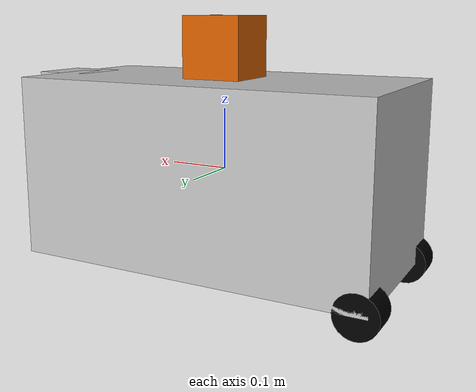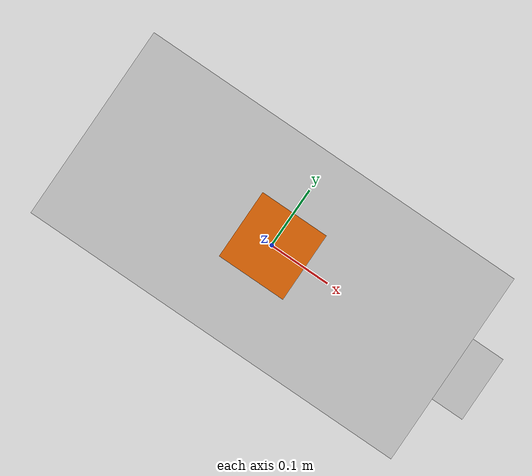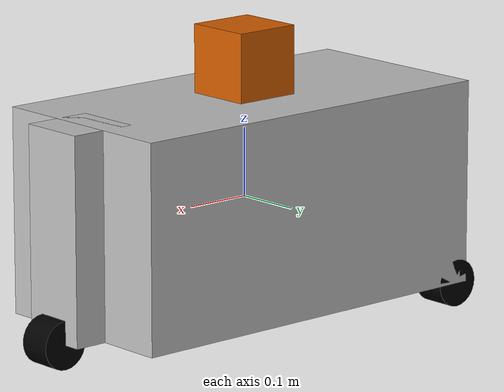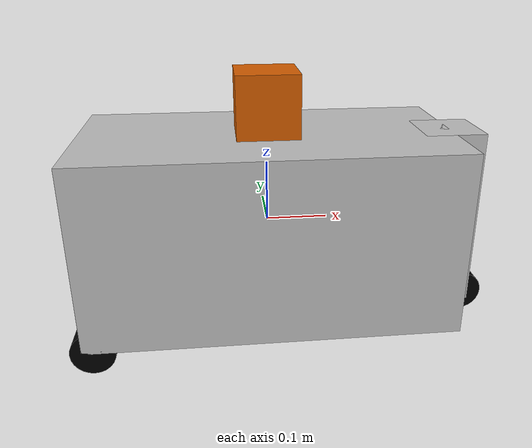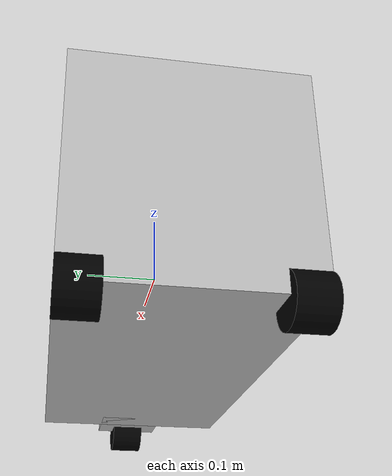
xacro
<?xml version="1.0"?>
<robot name= "mando">
  <link name="base_link">
    <inertial>
      <mass value="1.0"/>
      <inertia ixx="0.015" iyy="0.0375" izz="0.0375" ixy="0" ixz="0" iyz="0"/>
    </inertial>
    <visual>
      <geometry>
        <box size="0.6 0.3 0.3"/>
      </geometry>
      <material name="silver">
        <color rgba="0.75 0.75 0.75 1"/>
      </material>
    </visual>
    <collision>
      <geometry>
        <box size="0.6 0.3 0.3"/>
      </geometry>
    </collision>
  </link>
  <link name="front_caster">
    <inertial>
      <mass value="0.1"/>
      <inertia ixx="0.00083" iyy="0.00083" izz="0.000167" ixy="0" ixz="0" iyz="0"/>
    </inertial>
    <visual>
      <geometry>
        <box size="0.1 0.1 0.3"/>
      </geometry>
      <material name="silver"/>
    </visual>
    <collision>
      <geometry>
        <box size="0.1 0.1 0.3"/>
      </geometry>
    </collision>
  </link>
  <joint name="front_caster_joint" type="continuous">
    <axis xyz="0 0 1"/>
    <parent link="base_link"/>
    <child link="front_caster"/>
    <origin rpy="0 0 0" xyz="0.3 0 0"/>
  </joint>
  <link name="front_wheel">
    <inertial>
      <mass value="0.1"/>
      <inertia ixx="5.1458e-5" iyy="5.1458e-5" izz="6.125e-5" ixy="0" ixz="0" iyz="0"/>
    </inertial>
    <visual>
      <geometry>
        <cylinder length="0.05" radius="0.035"/>
      </geometry>
      <material name="black"/>
    </visual>
    <collision>
      <geometry>
        <cylinder length="0.05" radius="0.035"/>
      </geometry>
    </collision>

  </link>
  <joint name="front_wheel_joint" type="continuous">
    <axis xyz="0 0 1"/>
    <parent link="front_caster"/>
    <child link="front_wheel"/>
    <origin rpy="-1.5708 0 0" xyz="0.05 0 -.15"/>
  </joint>
  <link name="right_wheel">
    <inertial>
      <mass value="0.1"/>
      <inertia ixx="5.1458e-5" iyy="5.1458e-5" izz="6.125e-5" ixy="0" ixz="0" iyz="0"/>
    </inertial>
    <visual>
      <geometry>
        <cylinder length="0.05" radius="0.035"/>
      </geometry>
      <material name="black">
        <color rgba="0 0 0 1"/>
      </material>
    </visual>
    <collision>
      <geometry>
        <cylinder length="0.05" radius="0.035"/>
      </geometry>
    </collision>
  </link>
  <joint name="right_wheel_joint" type="continuous">
    <axis xyz="0 0 1"/>
    <parent link="base_link"/>
    <child link="right_wheel"/>
    <origin rpy="-1.5708 0 0" xyz="-0.2825 -0.125 -.15"/>
  </joint>
  <link name="left_wheel">
    <inertial>
      <mass value="0.1"/>
      <inertia ixx="5.1458e-5" iyy="5.1458e-5" izz="6.125e-5" ixy="0" ixz="0" iyz="0"/>
    </inertial>
    <visual>
      <geometry>
        <cylinder length="0.05" radius="0.035"/>
      </geometry>
      <material name="black"/>
    </visual>
    <collision>
      <geometry>
        <cylinder length="0.05" radius="0.035"/>
      </geometry>
    </collision>
  </link>
  <joint name="left_wheel_joint" type="continuous">
    <axis xyz="0 0 1"/>
    <parent link="base_link"/>
    <child link="left_wheel"/>
    <origin rpy="-1.5708 0 0" xyz="-0.2825 0.125 -.15"/>
  </joint>
  <link name="hokuyo_link">
    <collision>
      <origin xyz="0 0 0" rpy="0 0 0"/>
      <geometry>
        <box size="0.1 0.1 0.1"/>
      </geometry>
    </collision>
    <visual>
      <origin xyz="0 0 0" rpy="0 0 0"/>
      <geometry>
        <box size="0.1 0.1 0.1"/>
      </geometry>
    </visual>
    <inertial>
      <mass value="1e-5" />
      <origin xyz="0 0 0" rpy="0 0 0"/>
      <inertia ixx="1e-6" ixy="0" ixz="0" iyy="1e-6" iyz="0" izz="1e-6" />
    </inertial>
  </link>
  <joint name="hokuyo_joint" type="fixed">
    <axis xyz="0 1 0" />
    <origin xyz="0 0 0.2" rpy="0 0 0"/>
    <parent link="base_link"/>
    <child link="hokuyo_link"/>
  </joint>
  <gazebo>
    <plugin name="differential_drive_controller" filename="libgazebo_ros_diff_drive.so">
      <leftJoint>left_wheel_joint</leftJoint>
      <rightJoint>right_wheel_joint</rightJoint>
      <robotBaseFrame>base_link</robotBaseFrame>
      <wheelSeparation>0.25</wheelSeparation>
      <wheelDiameter>0.07</wheelDiameter>
      <publishWheelJointState>true</publishWheelJointState>
      <commandTopic>cmd_vel</commandTopic>
      <robotBaseFrame>base_link</robotBaseFrame>
    </plugin>
  </gazebo>
  <gazebo reference="hokuyo_link">
    <sensor name="head_hokuyo_sensor" type="ray">
      <pose>0 0 0 0 0 0</pose>
      <visualize>true</visualize>
      <update_rate>25</update_rate>      <!-- choosen for SICK LMS111-->
      <ray>
        <scan>
          <horizontal>
            <samples>720</samples>
            <resolution>1</resolution>
            <min_angle>-2.35619</min_angle>
            <max_angle>2.35619</max_angle>
          </horizontal>
        </scan>
        <range>
          <min>0.5</min>
          <max>20.0</max>
          <resolution>0.001</resolution>
        </range>
      </ray>
      <plugin filename="libgazebo_ros_laser.so" name="gazebo_ros_head_hokuyo_controller">
        <topicName>/scan</topicName>
        <frameName>hokuyo_link</frameName>
      </plugin>
    </sensor>
  </gazebo>

</robot>
